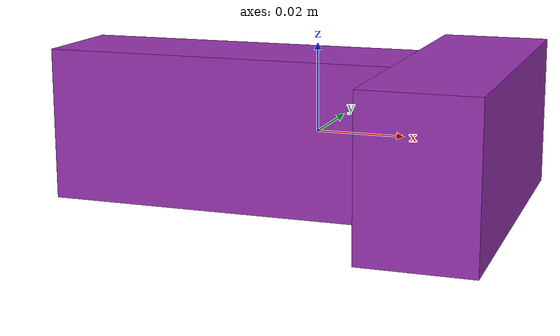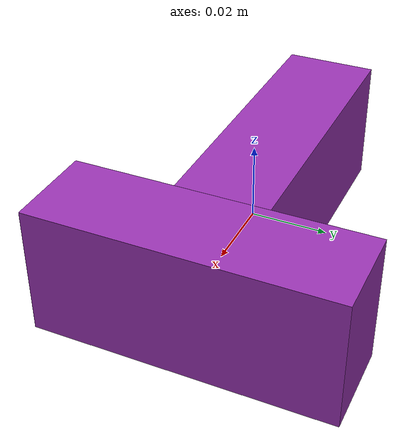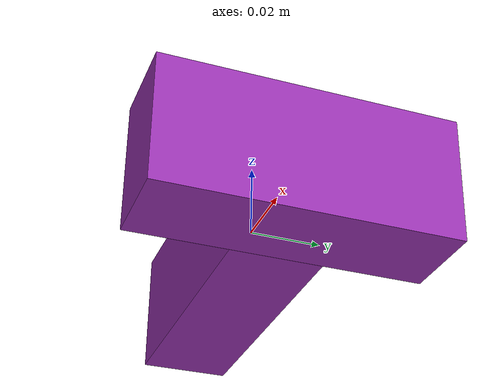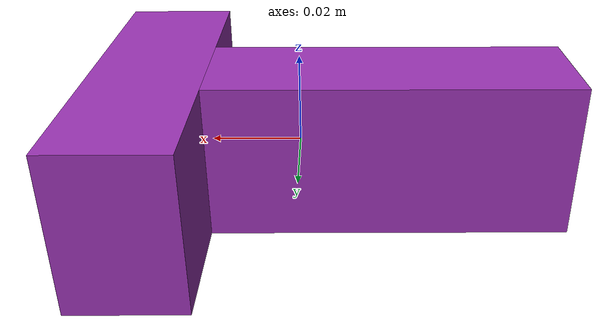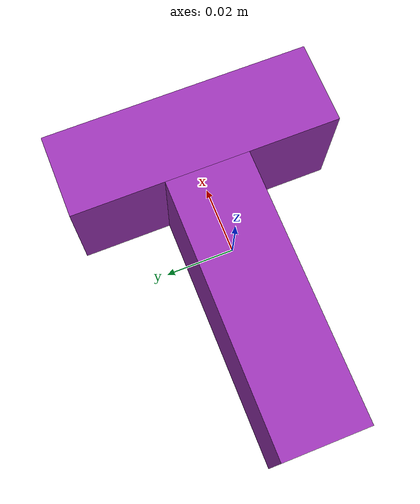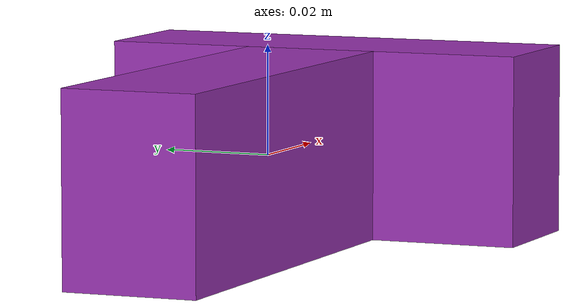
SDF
<?xml version='1.0'?>
<sdf version='1.6'>
  <model name='T_shape'>
    <link name='link'>
      <inertial>
        <mass>0.2</mass>
        <inertia>
          <ixx>0.0003</ixx> <ixy>0</ixy> <ixz>0</ixz>
          <iyy>0.0003</iyy> <iyz>0</iyz>
          <izz>0.0006</izz>
        </inertia>
      </inertial>

      <visual name='stem_vis'>
        <pose>-0.02 0 0 0 0 0</pose>
        <geometry><box><size>0.08 0.025 0.035</size></box></geometry>
        <material><script><name>Gazebo/Purple</name></script></material>
      </visual>
      <collision name='stem_col'>
        <pose>-0.02 0 0 0 0 0</pose>
        <geometry><box><size>0.08 0.025 0.035</size></box></geometry>
        <surface><friction><ode><mu>100.0</mu><mu2>100.0</mu2></ode></friction></surface>
      </collision>

      <visual name='top_vis'>
        <pose>0.0325 0 0 0 0 0</pose>
        <geometry><box><size>0.025 0.08 0.035</size></box></geometry>
        <material><script><name>Gazebo/Purple</name></script></material>
      </visual>
      <collision name='top_col'>
        <pose>0.0325 0 0 0 0 0</pose>
        <geometry><box><size>0.025 0.08 0.035</size></box></geometry>
        <surface><friction><ode><mu>100.0</mu><mu2>100.0</mu2></ode></friction></surface>
      </collision>
    </link>
  </model>
</sdf>
